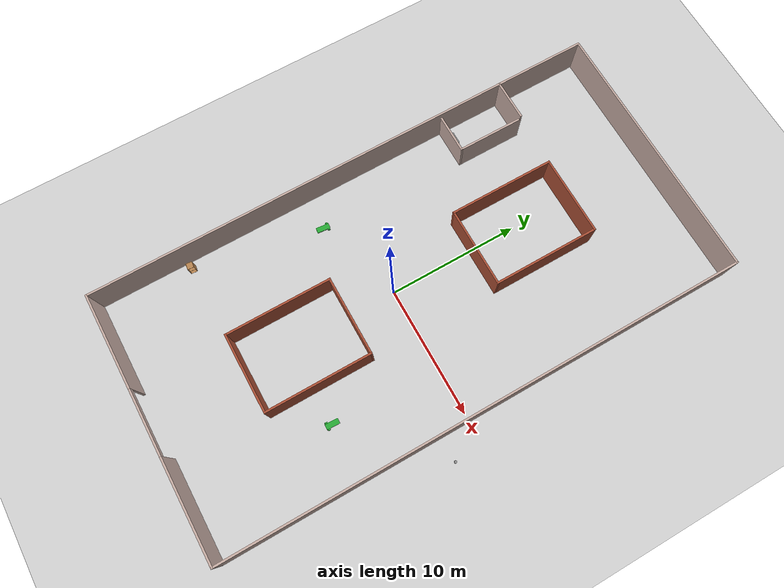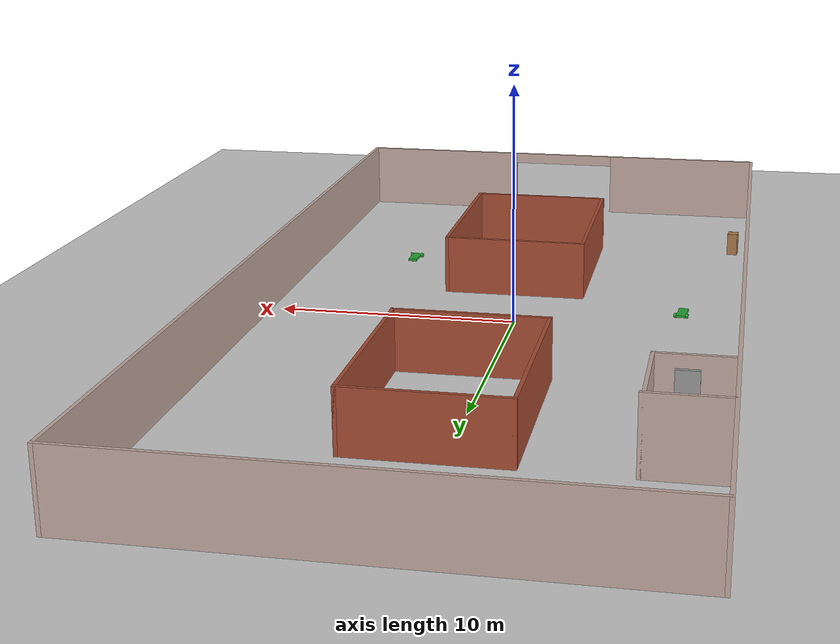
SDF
<sdf version="1.6">
 <world name="default">
  <plugin name="welcome" filename="libwelcome.so"/>
  <light name="sun" type="directional">
   <pose>0 0 10 0 -0 0</pose>
   <diffuse>0.8 0.8 0.8 1</diffuse>
   <specular>0.2 0.2 0.2 1</specular>
   <attenuation>
    <range>1000</range>
    <constant>0.9</constant>
    <linear>0.01</linear>
    <quadratic>0.001</quadratic>
   </attenuation>
   <direction>-0.5 0.1 -0.9</direction>
  </light>
  <model name="ground_plane">
   <static>1</static>
   <link name="link">
    <collision name="collision">
     <geometry><plane><normal>0 0 1</normal><size>100 100</size></plane></geometry>
     <surface>
      <contact><collide_bitmask>65535</collide_bitmask></contact>
      <friction><ode><mu>100</mu><mu2>50</mu2></ode></friction>
     </surface>
    </collision>
    <visual name="visual">
     <cast_shadows>0</cast_shadows>
     <geometry><plane><normal>0 0 1</normal><size>100 100</size></plane></geometry>
     <material>
      <script><uri>file://media/materials/scripts/gazebo.material</uri><name>Gazebo/Grey</name></script>
     </material>
    </visual>
   </link>
  </model>
  <gravity>0 0 -9.8</gravity>
  <magnetic_field>6e-06 2.3e-05 -4.2e-05</magnetic_field>
  <atmosphere type="adiabatic"/>
  <physics name="default_physics" default="0" type="ode">
   <max_step_size>0.001</max_step_size>
   <real_time_factor>1</real_time_factor>
   <real_time_update_rate>1000</real_time_update_rate>
  </physics>
  <scene><ambient>0.4 0.4 0.4 1</ambient><background>0.7 0.7 0.7 1</background><shadows>1</shadows></scene>
  <spherical_coordinates>
   <surface_model>EARTH_WGS84</surface_model>
   <latitude_deg>0</latitude_deg>
   <longitude_deg>0</longitude_deg>
   <elevation>0</elevation>
   <heading_deg>0</heading_deg>
  </spherical_coordinates>
  <model name="garage">
   <pose>0.57977 1.32269 0 0 -0 0</pose>
   <link name="Door_1">
    <collision name="Door_1_Collision">
     <geometry><box><size>0.9 0.17 2</size></box></geometry>
     <pose>0 0 1 0 -0 0</pose>
    </collision>
    <visual name="Door_1_Visual">
     <pose>0 0 1 0 -0 0</pose>
     <geometry><box><size>0.9 0.17 2</size></box></geometry>
     <material>
      <script><uri>file://media/materials/scripts/gazebo.material</uri><name>Gazebo/Grey</name></script>
     </material>
    </visual>
    <pose>-8.24921 8.22543 0 0 -0 0</pose>
   </link>
   <link name="Wall_11">
    <collision name="Wall_11_Collision">
     <geometry><box><size>6.15 0.15 2.5</size></box></geometry>
     <pose>0 0 1.25 0 -0 0</pose>
    </collision>
    <visual name="Wall_11_Visual">
     <pose>0 0 1.25 0 -0 0</pose>
     <geometry><box><size>6.15 0.15 2.5</size></box></geometry>
     <material>
      <script><uri>file://media/materials/scripts/gazebo.material</uri><name>Gazebo/Bricks</name></script>
      <ambient>1 1 1 1</ambient>
     </material>
     <meta><layer>0</layer></meta>
    </visual>
    <pose>0 13 0 0 -0 0</pose>
   </link>
   <link name="Wall_13">
    <collision name="Wall_13_Collision">
     <geometry><box><size>8.15 0.15 2.5</size></box></geometry>
     <pose>0 0 1.25 0 -0 0</pose>
    </collision>
    <visual name="Wall_13_Visual">
     <pose>0 0 1.25 0 -0 0</pose>
     <geometry><box><size>8.15 0.15 2.5</size></box></geometry>
     <material>
      <script><uri>file://media/materials/scripts/gazebo.material</uri><name>Gazebo/Bricks</name></script>
      <ambient>1 1 1 1</ambient>
     </material>
     <meta><layer>0</layer></meta>
    </visual>
    <pose>-3 -9 0 0 -0 1.5708</pose>
   </link>
   <link name="Wall_15">
    <collision name="Wall_15_Collision">
     <geometry><box><size>8.15 0.15 2.5</size></box></geometry>
     <pose>0 0 1.25 0 -0 0</pose>
    </collision>
    <visual name="Wall_15_Visual">
     <pose>0 0 1.25 0 -0 0</pose>
     <geometry><box><size>8.15 0.15 2.5</size></box></geometry>
     <material>
      <script><uri>file://media/materials/scripts/gazebo.material</uri><name>Gazebo/Bricks</name></script>
      <ambient>1 1 1 1</ambient>
     </material>
     <meta><layer>0</layer></meta>
    </visual>
    <pose>-3 9 0 0 0 -1.5708</pose>
   </link>
   <link name="Wall_17">
    <collision name="Wall_17_Collision">
     <geometry><box><size>8.15 0.15 2.5</size></box></geometry>
     <pose>0 0 1.25 0 -0 0</pose>
    </collision>
    <visual name="Wall_17_Visual">
     <pose>0 0 1.25 0 -0 0</pose>
     <geometry><box><size>8.15 0.15 2.5</size></box></geometry>
     <material>
      <script><uri>file://media/materials/scripts/gazebo.material</uri><name>Gazebo/Bricks</name></script>
      <ambient>1 1 1 1</ambient>
     </material>
     <meta><layer>0</layer></meta>
    </visual>
    <pose>3 -9 0 0 -0 1.5708</pose>
   </link>
   <link name="Wall_18">
    <collision name="Wall_18_Collision">
     <geometry><box><size>6.15 0.15 2.5</size></box></geometry>
     <pose>0 0 1.25 0 -0 0</pose>
    </collision>
    <visual name="Wall_18_Visual">
     <pose>0 0 1.25 0 -0 0</pose>
     <geometry><box><size>6.15 0.15 2.5</size></box></geometry>
     <material>
      <script><uri>file://media/materials/scripts/gazebo.material</uri><name>Gazebo/Bricks</name></script>
      <ambient>1 1 1 1</ambient>
     </material>
     <meta><layer>0</layer></meta>
    </visual>
    <pose>0 -5 0 0 -0 3.14159</pose>
   </link>
   <link name="Wall_20">
    <collision name="Wall_20_Collision">
     <geometry><box><size>8.15 0.15 2.5</size></box></geometry>
     <pose>0 0 1.25 0 -0 0</pose>
    </collision>
    <visual name="Wall_20_Visual">
     <pose>0 0 1.25 0 -0 0</pose>
     <geometry><box><size>8.15 0.15 2.5</size></box></geometry>
     <material>
      <script><uri>file://media/materials/scripts/gazebo.material</uri><name>Gazebo/Bricks</name></script>
      <ambient>1 1 1 1</ambient>
     </material>
     <meta><layer>0</layer></meta>
    </visual>
    <pose>3 9 0 0 0 -1.5708</pose>
   </link>
   <link name="Wall_21">
    <collision name="Wall_21_Collision">
     <geometry><box><size>6.15 0.15 2.5</size></box></geometry>
     <pose>0 0 1.25 0 -0 0</pose>
    </collision>
    <visual name="Wall_21_Visual">
     <pose>0 0 1.25 0 -0 0</pose>
     <geometry><box><size>6.15 0.15 2.5</size></box></geometry>
     <material>
      <script><uri>file://media/materials/scripts/gazebo.material</uri><name>Gazebo/Bricks</name></script>
      <ambient>1 1 1 1</ambient>
     </material>
     <meta><layer>0</layer></meta>
    </visual>
    <pose>0 5 0 0 -0 3.14159</pose>
   </link>
   <link name="Wall_4">
    <collision name="Wall_4_Collision">
     <geometry><box><size>40.1506 0.15 3</size></box></geometry>
     <pose>0 0 1.5 0 -0 0</pose>
    </collision>
    <visual name="Wall_4_Visual">
     <pose>0 0 1.5 0 -0 0</pose>
     <geometry><box><size>40.1506 0.15 3</size></box></geometry>
     <material>
      <script><uri>file://media/materials/scripts/gazebo.material</uri><name>Gazebo/Grey</name></script>
      <ambient>0.760784 0.662745 0.627451 1</ambient>
     </material>
     <meta><layer>0</layer></meta>
    </visual>
    <pose>-10 0 0 0 -0 1.5708</pose>
   </link>
   <link name="Wall_5">
    <collision name="Wall_5_Collision">
     <geometry><box><size>20.15 0.15 3</size></box></geometry>
     <pose>0 0 1.5 0 -0 0</pose>
    </collision>
    <visual name="Wall_5_Visual">
     <pose>0 0 1.5 0 -0 0</pose>
     <geometry><box><size>20.15 0.15 3</size></box></geometry>
     <material>
      <script><uri>file://media/materials/scripts/gazebo.material</uri><name>Gazebo/Grey</name></script>
      <ambient>0.760784 0.662745 0.627451 1</ambient>
     </material>
     <meta><layer>0</layer></meta>
    </visual>
    <pose>0 20 0 0 -0 0</pose>
   </link>
   <link name="Wall_6">
    <collision name="Wall_6_Collision">
     <geometry><box><size>40.1506 0.15 3</size></box></geometry>
     <pose>0 0 1.5 0 -0 0</pose>
    </collision>
    <visual name="Wall_6_Visual">
     <pose>0 0 1.5 0 -0 0</pose>
     <geometry><box><size>40.1506 0.15 3</size></box></geometry>
     <material>
      <script><uri>file://media/materials/scripts/gazebo.material</uri><name>Gazebo/Grey</name></script>
      <ambient>0.760784 0.662745 0.627451 1</ambient>
     </material>
     <meta><layer>0</layer></meta>
    </visual>
    <pose>10 0 0 0 0 -1.5708</pose>
   </link>
   <link name="Wall_7">
    <pose>0 -20 0 0 -0 3.14159</pose>
    <visual name="Wall_7_Visual_0">
     <pose>-6.19547 0 1.5 0 -0 0</pose>
     <geometry><box><size>7.75907 0.15 3</size></box></geometry>
     <material>
      <script><uri>file://media/materials/scripts/gazebo.material</uri><name>Gazebo/Grey</name></script>
      <ambient>0.760784 0.662745 0.627451 1</ambient>
     </material>
     <meta><layer>0</layer></meta>
    </visual>
    <collision name="Wall_7_Collision_0">
     <geometry><box><size>7.75907 0.15 3</size></box></geometry>
     <pose>-6.19547 0 1.5 0 -0 0</pose>
    </collision>
    <visual name="Wall_7_Visual_1">
     <pose>6.37953 0 1.5 0 -0 0</pose>
     <geometry><box><size>7.39093 0.15 3</size></box></geometry>
     <material>
      <script><uri>file://media/materials/scripts/gazebo.material</uri><name>Gazebo/Grey</name></script>
      <ambient>0.760784 0.662745 0.627451 1</ambient>
     </material>
     <meta><layer>0</layer></meta>
    </visual>
    <collision name="Wall_7_Collision_1">
     <geometry><box><size>7.39093 0.15 3</size></box></geometry>
     <pose>6.37953 0 1.5 0 -0 0</pose>
    </collision>
    <visual name="Wall_7_Visual_2">
     <pose>0.184069 0 2.75 0 -0 0</pose>
     <geometry><box><size>5 0.15 0.5</size></box></geometry>
     <material>
      <script><uri>file://media/materials/scripts/gazebo.material</uri><name>Gazebo/Grey</name></script>
      <ambient>0.760784 0.662745 0.627451 1</ambient>
     </material>
     <meta><layer>0</layer></meta>
    </visual>
    <collision name="Wall_7_Collision_2">
     <geometry><box><size>5 0.15 0.5</size></box></geometry>
     <pose>0.184069 0 2.75 0 -0 0</pose>
    </collision>
   </link>
   <link name="Wall_71">
    <collision name="Wall_71_Collision">
     <geometry><box><size>3.15 0.15 3</size></box></geometry>
     <pose>0 0 1.5 0 -0 0</pose>
    </collision>
    <visual name="Wall_71_Visual">
     <pose>0 0 1.5 0 -0 0</pose>
     <geometry><box><size>3.15 0.15 3</size></box></geometry>
     <material>
      <script><uri>file://media/materials/scripts/gazebo.material</uri><name>Gazebo/Grey</name></script>
      <ambient>0.760784 0.662745 0.627451 1</ambient>
     </material>
     <meta><layer>0</layer></meta>
    </visual>
    <pose>-8.5 13 0 0 -0 0</pose>
   </link>
   <link name="Wall_72">
    <collision name="Wall_72_Collision">
     <geometry><box><size>5.15 0.15 2.5</size></box></geometry>
     <pose>0 0 1.25 0 -0 0</pose>
    </collision>
    <visual name="Wall_72_Visual">
     <pose>0 0 1.25 0 -0 0</pose>
     <geometry><box><size>5.15 0.15 2.5</size></box></geometry>
     <material>
      <script><uri>file://media/materials/scripts/gazebo.material</uri><name>Gazebo/Grey</name></script>
      <ambient>0.760784 0.662745 0.627451 1</ambient>
     </material>
     <meta><layer>0</layer></meta>
    </visual>
    <pose>-7 10.5 0 0 0 -1.5708</pose>
   </link>
   <link name="Wall_73">
    <collision name="Wall_73_Collision">
     <geometry><box><size>3.15 0.15 2.5</size></box></geometry>
     <pose>0 0 1.25 0 -0 0</pose>
    </collision>
    <visual name="Wall_73_Visual">
     <pose>0 0 1.25 0 -0 0</pose>
     <geometry><box><size>3.15 0.15 2.5</size></box></geometry>
     <material>
      <script><uri>file://media/materials/scripts/gazebo.material</uri><name>Gazebo/Grey</name></script>
      <ambient>0.760784 0.662745 0.627451 1</ambient>
     </material>
     <meta><layer>0</layer></meta>
    </visual>
    <pose>-8.5 8 0 0 -0 3.14159</pose>
   </link>
   <link name="Wall_9">
    <collision name="Wall_9_Collision">
     <geometry><box><size>6.15 0.15 2.5</size></box></geometry>
     <pose>0 0 1.25 0 -0 0</pose>
    </collision>
    <visual name="Wall_9_Visual">
     <pose>0 0 1.25 0 -0 0</pose>
     <geometry><box><size>6.15 0.15 2.5</size></box></geometry>
     <material>
      <script><uri>file://media/materials/scripts/gazebo.material</uri><name>Gazebo/Bricks</name></script>
      <ambient>1 1 1 1</ambient>
     </material>
     <meta><layer>0</layer></meta>
    </visual>
    <pose>0 -13 0 0 -0 0</pose>
   </link>
   <static>1</static>
  </model>
  <model name="robocar">
   <link name="link_0">
    <pose>-0.08 1e-06 0.0125 0 -0 0</pose>
    <inertial>
     <mass>1</mass>
     <inertia>
      <ixx>0.166667</ixx>
      <ixy>0</ixy>
      <ixz>0</ixz>
      <iyy>0.166667</iyy>
      <iyz>0</iyz>
      <izz>0.166667</izz>
     </inertia>
    </inertial>
    <visual name="visual">
     <geometry><box><size>1 0.4 0.1</size></box></geometry>
     <material>
      <lighting>1</lighting>
      <script><uri>file://media/materials/scripts/gazebo.material</uri><name>Gazebo/Green</name></script>
      <shader type="pixel"><normal_map>__default__</normal_map></shader>
      <ambient>0.3 0.3 0.3 1</ambient>
      <diffuse>0.7 0.7 0.7 1</diffuse>
      <specular>0.01 0.01 0.01 1</specular>
      <emissive>0 0 1 1</emissive>
     </material>
    </visual>
    <collision name="collision">
     <geometry><box><size>1 0.4 0.1</size></box></geometry>
     <surface>
      <friction>
       <ode><mu>1</mu><mu2>1</mu2><fdir1>0 0 0</fdir1><slip1>0</slip1><slip2>0</slip2></ode>
       <torsional>
        <coefficient>1</coefficient>
        <patch_radius>0</patch_radius>
        <surface_radius>0</surface_radius>
        <use_patch_radius>1</use_patch_radius>
        <ode><slip>0</slip></ode>
       </torsional>
      </friction>
      <bounce><restitution_coefficient>0</restitution_coefficient><threshold>1e+06</threshold></bounce>
      <contact>
       <collide_without_contact>0</collide_without_contact>
       <collide_without_contact_bitmask>1</collide_without_contact_bitmask>
       <collide_bitmask>1</collide_bitmask>
       <ode>
        <soft_cfm>0</soft_cfm>
        <soft_erp>0.2</soft_erp>
        <kp>1e+13</kp>
        <kd>1</kd>
        <max_vel>0.01</max_vel>
        <min_depth>0</min_depth>
       </ode>
       <bullet>
        <split_impulse>1</split_impulse>
        <split_impulse_penetration_threshold>-0.01</split_impulse_penetration_threshold>
        <soft_cfm>0</soft_cfm>
        <soft_erp>0.2</soft_erp>
        <kp>1e+13</kp>
        <kd>1</kd>
       </bullet>
      </contact>
     </surface>
    </collision>
   </link>
   <link name="link_1">
    <pose>0.28 -0.250013 0.0125 1.5707 -0 0</pose>
    <inertial>
     <mass>1</mass>
     <inertia><ixx>0.145833</ixx><ixy>0</ixy><ixz>0</ixz><iyy>0.145833</iyy><iyz>0</iyz><izz>0.125</izz></inertia>
    </inertial>
    <visual name="visual">
     <geometry><cylinder><radius>0.1</radius><length>0.1</length></cylinder></geometry>
     <material>
      <lighting>1</lighting>
      <script><uri>file://media/materials/scripts/gazebo.material</uri><name>Gazebo/Green</name></script>
      <shader type="pixel"><normal_map>__default__</normal_map></shader>
      <ambient>0.3 0.3 0.3 1</ambient>
      <diffuse>0.7 0.7 0.7 1</diffuse>
      <specular>0.01 0.01 0.01 1</specular>
      <emissive>1 0 0 1</emissive>
     </material>
    </visual>
    <collision name="collision">
     <geometry><cylinder><radius>0.1</radius><length>0.1</length></cylinder></geometry>
     <surface>
      <friction>
       <ode><mu>1</mu><mu2>1</mu2><fdir1>0 0 0</fdir1><slip1>0</slip1><slip2>0</slip2></ode>
       <torsional>
        <coefficient>1</coefficient>
        <patch_radius>0</patch_radius>
        <surface_radius>0</surface_radius>
        <use_patch_radius>1</use_patch_radius>
        <ode><slip>0</slip></ode>
       </torsional>
      </friction>
      <bounce><restitution_coefficient>0</restitution_coefficient><threshold>1e+06</threshold></bounce>
      <contact>
       <collide_without_contact>0</collide_without_contact>
       <collide_without_contact_bitmask>1</collide_without_contact_bitmask>
       <collide_bitmask>1</collide_bitmask>
       <ode>
        <soft_cfm>0</soft_cfm>
        <soft_erp>0.2</soft_erp>
        <kp>1e+13</kp>
        <kd>1</kd>
        <max_vel>0.01</max_vel>
        <min_depth>0</min_depth>
       </ode>
       <bullet>
        <split_impulse>1</split_impulse>
        <split_impulse_penetration_threshold>-0.01</split_impulse_penetration_threshold>
        <soft_cfm>0</soft_cfm>
        <soft_erp>0.2</soft_erp>
        <kp>1e+13</kp>
        <kd>1</kd>
       </bullet>
      </contact>
     </surface>
    </collision>
   </link>
   <link name="link_1_clone">
    <pose>0.28 0.250011 0.0125 1.5707 -0 0</pose>
    <inertial>
     <mass>1</mass>
     <inertia><ixx>0.145833</ixx><ixy>0</ixy><ixz>0</ixz><iyy>0.145833</iyy><iyz>0</iyz><izz>0.125</izz></inertia>
    </inertial>
    <visual name="visual">
     <geometry><cylinder><radius>0.1</radius><length>0.1</length></cylinder></geometry>
     <material>
      <lighting>1</lighting>
      <script><uri>file://media/materials/scripts/gazebo.material</uri><name>Gazebo/Green</name></script>
      <shader type="pixel"><normal_map>__default__</normal_map></shader>
      <ambient>0.3 0.3 0.3 1</ambient>
      <diffuse>0.7 0.7 0.7 1</diffuse>
      <specular>0.01 0.01 0.01 1</specular>
      <emissive>1 0 0 1</emissive>
     </material>
    </visual>
    <collision name="collision">
     <geometry><cylinder><radius>0.1</radius><length>0.1</length></cylinder></geometry>
     <surface>
      <friction>
       <ode><mu>1</mu><mu2>1</mu2><fdir1>0 0 0</fdir1><slip1>0</slip1><slip2>0</slip2></ode>
       <torsional>
        <coefficient>1</coefficient>
        <patch_radius>0</patch_radius>
        <surface_radius>0</surface_radius>
        <use_patch_radius>1</use_patch_radius>
        <ode><slip>0</slip></ode>
       </torsional>
      </friction>
      <bounce><restitution_coefficient>0</restitution_coefficient><threshold>1e+06</threshold></bounce>
      <contact>
       <collide_without_contact>0</collide_without_contact>
       <collide_without_contact_bitmask>1</collide_without_contact_bitmask>
       <collide_bitmask>1</collide_bitmask>
       <ode>
        <soft_cfm>0</soft_cfm>
        <soft_erp>0.2</soft_erp>
        <kp>1e+13</kp>
        <kd>1</kd>
        <max_vel>0.01</max_vel>
        <min_depth>0</min_depth>
       </ode>
       <bullet>
        <split_impulse>1</split_impulse>
        <split_impulse_penetration_threshold>-0.01</split_impulse_penetration_threshold>
        <soft_cfm>0</soft_cfm>
        <soft_erp>0.2</soft_erp>
        <kp>1e+13</kp>
        <kd>1</kd>
       </bullet>
      </contact>
     </surface>
    </collision>
   </link>
   <link name="link_2">
    <pose>-0.48 1e-06 -0.0375 0 -0 0</pose>
    <inertial>
     <mass>1</mass>
     <inertia><ixx>0.1</ixx><ixy>0</ixy><ixz>0</ixz><iyy>0.1</iyy><iyz>0</iyz><izz>0.1</izz></inertia>
    </inertial>
    <visual name="visual">
     <geometry><sphere><radius>0.05</radius></sphere></geometry>
     <material>
      <lighting>1</lighting>
      <script><uri>file://media/materials/scripts/gazebo.material</uri><name>Gazebo/Green</name></script>
      <shader type="pixel"><normal_map>__default__</normal_map></shader>
      <ambient>0.3 0.3 0.3 1</ambient>
      <diffuse>0.7 0.7 0.7 1</diffuse>
      <specular>0.01 0.01 0.01 1</specular>
      <emissive>1 0 0 1</emissive>
     </material>
    </visual>
    <collision name="collision">
     <geometry><sphere><radius>0.05</radius></sphere></geometry>
     <surface>
      <friction>
       <ode><mu>1</mu><mu2>1</mu2><fdir1>0 0 0</fdir1><slip1>0</slip1><slip2>0</slip2></ode>
       <torsional>
        <coefficient>1</coefficient>
        <patch_radius>0</patch_radius>
        <surface_radius>0</surface_radius>
        <use_patch_radius>1</use_patch_radius>
        <ode><slip>0</slip></ode>
       </torsional>
      </friction>
      <bounce><restitution_coefficient>0</restitution_coefficient><threshold>1e+06</threshold></bounce>
      <contact>
       <collide_without_contact>0</collide_without_contact>
       <collide_without_contact_bitmask>1</collide_without_contact_bitmask>
       <collide_bitmask>1</collide_bitmask>
       <ode>
        <soft_cfm>0</soft_cfm>
        <soft_erp>0.2</soft_erp>
        <kp>1e+13</kp>
        <kd>1</kd>
        <max_vel>0.01</max_vel>
        <min_depth>0</min_depth>
       </ode>
       <bullet>
        <split_impulse>1</split_impulse>
        <split_impulse_penetration_threshold>-0.01</split_impulse_penetration_threshold>
        <soft_cfm>0</soft_cfm>
        <soft_erp>0.2</soft_erp>
        <kp>1e+13</kp>
        <kd>1</kd>
       </bullet>
      </contact>
     </surface>
    </collision>
   </link>
   <joint name="link_0_JOINT_0" type="revolute">
    <parent>link_0</parent>
    <child>link_1</child>
    <axis>
     <xyz>0 0 1</xyz>
     <use_parent_model_frame>0</use_parent_model_frame>
     <limit>
      <lower>-1.79769e+308</lower>
      <upper>1.79769e+308</upper>
      <effort>-1</effort>
      <velocity>-1</velocity>
     </limit>
     <dynamics>
      <spring_reference>0</spring_reference>
      <spring_stiffness>0</spring_stiffness>
      <damping>0</damping>
      <friction>0</friction>
     </dynamics>
    </axis>
    <physics>
     <ode><limit><cfm>0</cfm><erp>0.2</erp></limit><suspension><cfm>0</cfm><erp>0.2</erp></suspension></ode>
    </physics>
   </joint>
   <joint name="link_0_JOINT_2" type="revolute">
    <parent>link_0</parent>
    <child>link_1_clone</child>
    <axis>
     <xyz>0 0 1</xyz>
     <use_parent_model_frame>0</use_parent_model_frame>
     <limit>
      <lower>-1.79769e+308</lower>
      <upper>1.79769e+308</upper>
      <effort>-1</effort>
      <velocity>-1</velocity>
     </limit>
     <dynamics>
      <spring_reference>0</spring_reference>
      <spring_stiffness>0</spring_stiffness>
      <damping>0</damping>
      <friction>0</friction>
     </dynamics>
    </axis>
    <physics>
     <ode><limit><cfm>0</cfm><erp>0.2</erp></limit><suspension><cfm>0</cfm><erp>0.2</erp></suspension></ode>
    </physics>
   </joint>
   <joint name="link_0_JOINT_3" type="ball">
    <parent>link_0</parent>
    <child>link_2</child>
    <physics>
     <ode><limit><cfm>0</cfm><erp>0.2</erp></limit><suspension><cfm>0</cfm><erp>0.2</erp></suspension></ode>
    </physics>
   </joint>
   <static>0</static>
   <pose>6.11224 -8.3316 0.087502 4e-06 -5e-06 -1.60275</pose>
  </model>
  <model name="cabinet">
   <static>1</static>
   <link name="cabinet_bottom_plate">
    <inertial>
     <pose>0 0 -1 0 -0 0</pose>
     <inertia><ixx>2.05</ixx><ixy>0</ixy><ixz>0</ixz><iyy>2.05</iyy><iyz>0</iyz><izz>2.05</izz></inertia>
     <mass>25</mass>
    </inertial>
    <collision name="cabinet_bottom_plate_geom">
     <pose>0 0 0.01 0 -0 0</pose>
     <geometry><box><size>0.45 0.45 0.02</size></box></geometry>
    </collision>
    <visual name="cabinet_bottom_plate_geom_visual">
     <pose>0 0 0.01 0 -0 0</pose>
     <geometry><box><size>0.45 0.45 0.02</size></box></geometry>
     <material>
      <script><uri>file://media/materials/scripts/gazebo.material</uri><name>Gazebo/Wood</name></script>
     </material>
    </visual>
    <collision name="cabinet_bottom_plate_geom_cabinet_back_plate">
     <pose>0.235 0 0.51 0 -0 0</pose>
     <geometry><box><size>0.02 0.45 1.02</size></box></geometry>
    </collision>
    <visual name="cabinet_bottom_plate_geom_cabinet_back_plate_visual">
     <pose>0.235 0 0.51 0 -0 0</pose>
     <geometry><box><size>0.02 0.45 1.02</size></box></geometry>
     <material>
      <script><uri>file://media/materials/scripts/gazebo.material</uri><name>Gazebo/Wood</name></script>
     </material>
    </visual>
    <collision name="cabinet_bottom_plate_geom_cabinet_left_plate">
     <pose>0 0.235 0.51 0 -0 0</pose>
     <geometry><box><size>0.45 0.02 1.02</size></box></geometry>
    </collision>
    <visual name="cabinet_bottom_plate_geom_cabinet_left_plate_visual">
     <pose>0 0.235 0.51 0 -0 0</pose>
     <geometry><box><size>0.45 0.02 1.02</size></box></geometry>
     <material>
      <script><uri>file://media/materials/scripts/gazebo.material</uri><name>Gazebo/Wood</name></script>
     </material>
    </visual>
    <collision name="cabinet_bottom_plate_geom_cabinet_middle_plate">
     <pose>0 0 0.51 0 -0 0</pose>
     <geometry><box><size>0.45 0.45 0.02</size></box></geometry>
    </collision>
    <visual name="cabinet_bottom_plate_geom_cabinet_middle_plate_visual">
     <pose>0 0 0.51 0 -0 0</pose>
     <geometry><box><size>0.45 0.45 0.02</size></box></geometry>
     <material>
      <script><uri>file://media/materials/scripts/gazebo.material</uri><name>Gazebo/Wood</name></script>
     </material>
    </visual>
    <collision name="cabinet_bottom_plate_geom_cabinet_right_plate">
     <pose>0 -0.235 0.51 0 -0 0</pose>
     <geometry><box><size>0.45 0.02 1.02</size></box></geometry>
    </collision>
    <visual name="cabinet_bottom_plate_geom_cabinet_right_plate_visual">
     <pose>0 -0.235 0.51 0 -0 0</pose>
     <geometry><box><size>0.45 0.02 1.02</size></box></geometry>
     <material>
      <script><uri>file://media/materials/scripts/gazebo.material</uri><name>Gazebo/Wood</name></script>
     </material>
    </visual>
    <collision name="cabinet_bottom_plate_geom_cabinet_top_plate">
     <pose>0 0 1.01 0 -0 0</pose>
     <geometry><box><size>0.45 0.45 0.02</size></box></geometry>
    </collision>
    <visual name="cabinet_bottom_plate_geom_cabinet_top_plate_visual">
     <pose>0 0 1.01 0 -0 0</pose>
     <geometry><box><size>0.45 0.45 0.02</size></box></geometry>
     <material>
      <script><uri>file://media/materials/scripts/gazebo.material</uri><name>Gazebo/Wood</name></script>
     </material>
    </visual>
   </link>
   <pose>-8.74518 -11.8582 0 0 -0 3.04508</pose>
  </model>
  <model name="robocar_0">
   <link name="link_0">
    <pose>-0.08 1e-06 0.0125 0 -0 0</pose>
    <inertial>
     <mass>1</mass>
     <inertia>
      <ixx>0.166667</ixx>
      <ixy>0</ixy>
      <ixz>0</ixz>
      <iyy>0.166667</iyy>
      <iyz>0</iyz>
      <izz>0.166667</izz>
     </inertia>
    </inertial>
    <visual name="visual">
     <geometry><box><size>1 0.4 0.1</size></box></geometry>
     <material>
      <lighting>1</lighting>
      <script><uri>file://media/materials/scripts/gazebo.material</uri><name>Gazebo/Green</name></script>
      <shader type="pixel"><normal_map>__default__</normal_map></shader>
      <ambient>0.3 0.3 0.3 1</ambient>
      <diffuse>0.7 0.7 0.7 1</diffuse>
      <specular>0.01 0.01 0.01 1</specular>
      <emissive>0 0 1 1</emissive>
     </material>
    </visual>
    <collision name="collision">
     <geometry><box><size>1 0.4 0.1</size></box></geometry>
     <surface>
      <friction>
       <ode><mu>1</mu><mu2>1</mu2><fdir1>0 0 0</fdir1><slip1>0</slip1><slip2>0</slip2></ode>
       <torsional>
        <coefficient>1</coefficient>
        <patch_radius>0</patch_radius>
        <surface_radius>0</surface_radius>
        <use_patch_radius>1</use_patch_radius>
        <ode><slip>0</slip></ode>
       </torsional>
      </friction>
      <bounce><restitution_coefficient>0</restitution_coefficient><threshold>1e+06</threshold></bounce>
      <contact>
       <collide_without_contact>0</collide_without_contact>
       <collide_without_contact_bitmask>1</collide_without_contact_bitmask>
       <collide_bitmask>1</collide_bitmask>
       <ode>
        <soft_cfm>0</soft_cfm>
        <soft_erp>0.2</soft_erp>
        <kp>1e+13</kp>
        <kd>1</kd>
        <max_vel>0.01</max_vel>
        <min_depth>0</min_depth>
       </ode>
       <bullet>
        <split_impulse>1</split_impulse>
        <split_impulse_penetration_threshold>-0.01</split_impulse_penetration_threshold>
        <soft_cfm>0</soft_cfm>
        <soft_erp>0.2</soft_erp>
        <kp>1e+13</kp>
        <kd>1</kd>
       </bullet>
      </contact>
     </surface>
    </collision>
   </link>
   <link name="link_1">
    <pose>0.28 -0.250013 0.0125 1.5707 -0 0</pose>
    <inertial>
     <mass>1</mass>
     <inertia><ixx>0.145833</ixx><ixy>0</ixy><ixz>0</ixz><iyy>0.145833</iyy><iyz>0</iyz><izz>0.125</izz></inertia>
    </inertial>
    <visual name="visual">
     <geometry><cylinder><radius>0.1</radius><length>0.1</length></cylinder></geometry>
     <material>
      <lighting>1</lighting>
      <script><uri>file://media/materials/scripts/gazebo.material</uri><name>Gazebo/Green</name></script>
      <shader type="pixel"><normal_map>__default__</normal_map></shader>
      <ambient>0.3 0.3 0.3 1</ambient>
      <diffuse>0.7 0.7 0.7 1</diffuse>
      <specular>0.01 0.01 0.01 1</specular>
      <emissive>1 0 0 1</emissive>
     </material>
    </visual>
    <collision name="collision">
     <geometry><cylinder><radius>0.1</radius><length>0.1</length></cylinder></geometry>
     <surface>
      <friction>
       <ode><mu>1</mu><mu2>1</mu2><fdir1>0 0 0</fdir1><slip1>0</slip1><slip2>0</slip2></ode>
       <torsional>
        <coefficient>1</coefficient>
        <patch_radius>0</patch_radius>
        <surface_radius>0</surface_radius>
        <use_patch_radius>1</use_patch_radius>
        <ode><slip>0</slip></ode>
       </torsional>
      </friction>
      <bounce><restitution_coefficient>0</restitution_coefficient><threshold>1e+06</threshold></bounce>
      <contact>
       <collide_without_contact>0</collide_without_contact>
       <collide_without_contact_bitmask>1</collide_without_contact_bitmask>
       <collide_bitmask>1</collide_bitmask>
       <ode>
        <soft_cfm>0</soft_cfm>
        <soft_erp>0.2</soft_erp>
        <kp>1e+13</kp>
        <kd>1</kd>
        <max_vel>0.01</max_vel>
        <min_depth>0</min_depth>
       </ode>
       <bullet>
        <split_impulse>1</split_impulse>
        <split_impulse_penetration_threshold>-0.01</split_impulse_penetration_threshold>
        <soft_cfm>0</soft_cfm>
        <soft_erp>0.2</soft_erp>
        <kp>1e+13</kp>
        <kd>1</kd>
       </bullet>
      </contact>
     </surface>
    </collision>
   </link>
   <link name="link_1_clone">
    <pose>0.28 0.250011 0.0125 1.5707 -0 0</pose>
    <inertial>
     <mass>1</mass>
     <inertia><ixx>0.145833</ixx><ixy>0</ixy><ixz>0</ixz><iyy>0.145833</iyy><iyz>0</iyz><izz>0.125</izz></inertia>
    </inertial>
    <visual name="visual">
     <geometry><cylinder><radius>0.1</radius><length>0.1</length></cylinder></geometry>
     <material>
      <lighting>1</lighting>
      <script><uri>file://media/materials/scripts/gazebo.material</uri><name>Gazebo/Green</name></script>
      <shader type="pixel"><normal_map>__default__</normal_map></shader>
      <ambient>0.3 0.3 0.3 1</ambient>
      <diffuse>0.7 0.7 0.7 1</diffuse>
      <specular>0.01 0.01 0.01 1</specular>
      <emissive>1 0 0 1</emissive>
     </material>
    </visual>
    <collision name="collision">
     <geometry><cylinder><radius>0.1</radius><length>0.1</length></cylinder></geometry>
     <surface>
      <friction>
       <ode><mu>1</mu><mu2>1</mu2><fdir1>0 0 0</fdir1><slip1>0</slip1><slip2>0</slip2></ode>
       <torsional>
        <coefficient>1</coefficient>
        <patch_radius>0</patch_radius>
        <surface_radius>0</surface_radius>
        <use_patch_radius>1</use_patch_radius>
        <ode><slip>0</slip></ode>
       </torsional>
      </friction>
      <bounce><restitution_coefficient>0</restitution_coefficient><threshold>1e+06</threshold></bounce>
      <contact>
       <collide_without_contact>0</collide_without_contact>
       <collide_without_contact_bitmask>1</collide_without_contact_bitmask>
       <collide_bitmask>1</collide_bitmask>
       <ode>
        <soft_cfm>0</soft_cfm>
        <soft_erp>0.2</soft_erp>
        <kp>1e+13</kp>
        <kd>1</kd>
        <max_vel>0.01</max_vel>
        <min_depth>0</min_depth>
       </ode>
       <bullet>
        <split_impulse>1</split_impulse>
        <split_impulse_penetration_threshold>-0.01</split_impulse_penetration_threshold>
        <soft_cfm>0</soft_cfm>
        <soft_erp>0.2</soft_erp>
        <kp>1e+13</kp>
        <kd>1</kd>
       </bullet>
      </contact>
     </surface>
    </collision>
   </link>
   <link name="link_2">
    <pose>-0.48 1e-06 -0.0375 0 -0 0</pose>
    <inertial>
     <mass>1</mass>
     <inertia><ixx>0.1</ixx><ixy>0</ixy><ixz>0</ixz><iyy>0.1</iyy><iyz>0</iyz><izz>0.1</izz></inertia>
    </inertial>
    <visual name="visual">
     <geometry><sphere><radius>0.05</radius></sphere></geometry>
     <material>
      <lighting>1</lighting>
      <script><uri>file://media/materials/scripts/gazebo.material</uri><name>Gazebo/Green</name></script>
      <shader type="pixel"><normal_map>__default__</normal_map></shader>
      <ambient>0.3 0.3 0.3 1</ambient>
      <diffuse>0.7 0.7 0.7 1</diffuse>
      <specular>0.01 0.01 0.01 1</specular>
      <emissive>1 0 0 1</emissive>
     </material>
    </visual>
    <collision name="collision">
     <geometry><sphere><radius>0.05</radius></sphere></geometry>
     <surface>
      <friction>
       <ode><mu>1</mu><mu2>1</mu2><fdir1>0 0 0</fdir1><slip1>0</slip1><slip2>0</slip2></ode>
       <torsional>
        <coefficient>1</coefficient>
        <patch_radius>0</patch_radius>
        <surface_radius>0</surface_radius>
        <use_patch_radius>1</use_patch_radius>
        <ode><slip>0</slip></ode>
       </torsional>
      </friction>
      <bounce><restitution_coefficient>0</restitution_coefficient><threshold>1e+06</threshold></bounce>
      <contact>
       <collide_without_contact>0</collide_without_contact>
       <collide_without_contact_bitmask>1</collide_without_contact_bitmask>
       <collide_bitmask>1</collide_bitmask>
       <ode>
        <soft_cfm>0</soft_cfm>
        <soft_erp>0.2</soft_erp>
        <kp>1e+13</kp>
        <kd>1</kd>
        <max_vel>0.01</max_vel>
        <min_depth>0</min_depth>
       </ode>
       <bullet>
        <split_impulse>1</split_impulse>
        <split_impulse_penetration_threshold>-0.01</split_impulse_penetration_threshold>
        <soft_cfm>0</soft_cfm>
        <soft_erp>0.2</soft_erp>
        <kp>1e+13</kp>
        <kd>1</kd>
       </bullet>
      </contact>
     </surface>
    </collision>
   </link>
   <joint name="link_0_JOINT_0" type="revolute">
    <parent>link_0</parent>
    <child>link_1</child>
    <axis>
     <xyz>0 0 1</xyz>
     <use_parent_model_frame>0</use_parent_model_frame>
     <limit>
      <lower>-1.79769e+308</lower>
      <upper>1.79769e+308</upper>
      <effort>-1</effort>
      <velocity>-1</velocity>
     </limit>
     <dynamics>
      <spring_reference>0</spring_reference>
      <spring_stiffness>0</spring_stiffness>
      <damping>0</damping>
      <friction>0</friction>
     </dynamics>
    </axis>
    <physics>
     <ode><limit><cfm>0</cfm><erp>0.2</erp></limit><suspension><cfm>0</cfm><erp>0.2</erp></suspension></ode>
    </physics>
   </joint>
   <joint name="link_0_JOINT_2" type="revolute">
    <parent>link_0</parent>
    <child>link_1_clone</child>
    <axis>
     <xyz>0 0 1</xyz>
     <use_parent_model_frame>0</use_parent_model_frame>
     <limit>
      <lower>-1.79769e+308</lower>
      <upper>1.79769e+308</upper>
      <effort>-1</effort>
      <velocity>-1</velocity>
     </limit>
     <dynamics>
      <spring_reference>0</spring_reference>
      <spring_stiffness>0</spring_stiffness>
      <damping>0</damping>
      <friction>0</friction>
     </dynamics>
    </axis>
    <physics>
     <ode><limit><cfm>0</cfm><erp>0.2</erp></limit><suspension><cfm>0</cfm><erp>0.2</erp></suspension></ode>
    </physics>
   </joint>
   <joint name="link_0_JOINT_3" type="ball">
    <parent>link_0</parent>
    <child>link_2</child>
    <physics>
     <ode><limit><cfm>0</cfm><erp>0.2</erp></limit><suspension><cfm>0</cfm><erp>0.2</erp></suspension></ode>
    </physics>
   </joint>
   <static>0</static>
   <pose>-6.88442 -2.06792 0.087502 6e-06 -4e-06 1.47649</pose>
  </model>
  <model name="my_ball">
   <link name="link">
    <inertial>
     <mass>1</mass>
     <inertia><ixx>0.1</ixx><ixy>0</ixy><ixz>0</ixz><iyy>0.1</iyy><iyz>0</iyz><izz>0.1</izz></inertia>
    </inertial>
    <visual name="visual">
     <geometry><sphere><radius>0.1</radius></sphere></geometry>
     <material>
      <script><name>Gazebo/Grey</name><uri>file://media/materials/scripts/gazebo.material</uri></script>
      <shader type="pixel"><normal_map>__default__</normal_map></shader>
      <ambient>1 1 1 1</ambient>
      <diffuse>1 1 1 1</diffuse>
      <specular>1 1 1 1</specular>
      <emissive>1 1 1 1</emissive>
     </material>
    </visual>
    <collision name="collision">
     <geometry><sphere><radius>0.1</radius></sphere></geometry>
     <surface>
      <friction>
       <ode><mu>1</mu><mu2>1</mu2><fdir1>0 0 0</fdir1><slip1>0</slip1><slip2>0</slip2></ode>
       <torsional>
        <coefficient>1</coefficient>
        <patch_radius>0</patch_radius>
        <surface_radius>0</surface_radius>
        <use_patch_radius>1</use_patch_radius>
        <ode><slip>0</slip></ode>
       </torsional>
      </friction>
      <bounce><restitution_coefficient>0</restitution_coefficient><threshold>1e+06</threshold></bounce>
      <contact>
       <collide_without_contact>0</collide_without_contact>
       <collide_without_contact_bitmask>1</collide_without_contact_bitmask>
       <collide_bitmask>1</collide_bitmask>
       <ode>
        <soft_cfm>0</soft_cfm>
        <soft_erp>0.2</soft_erp>
        <kp>1e+13</kp>
        <kd>1</kd>
        <max_vel>0.01</max_vel>
        <min_depth>0</min_depth>
       </ode>
       <bullet>
        <split_impulse>1</split_impulse>
        <split_impulse_penetration_threshold>-0.01</split_impulse_penetration_threshold>
        <soft_cfm>0</soft_cfm>
        <soft_erp>0.2</soft_erp>
        <kp>1e+13</kp>
        <kd>1</kd>
       </bullet>
      </contact>
     </surface>
    </collision>
   </link>
   <static>0</static>
   <pose>12.4794 -2.19838 0.1 0 -0 0</pose>
  </model>
 </world>
</sdf>
